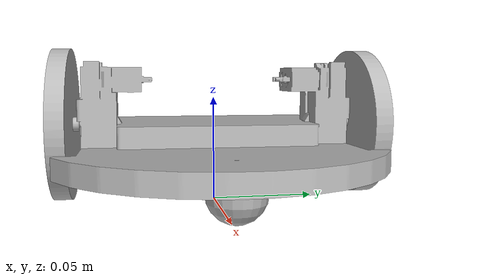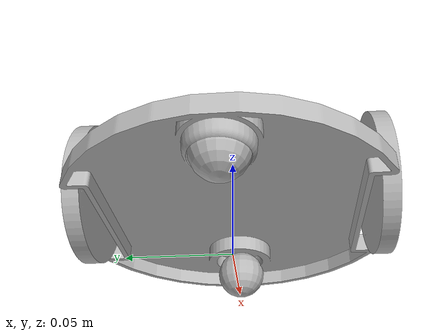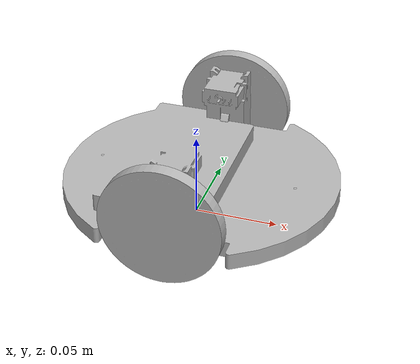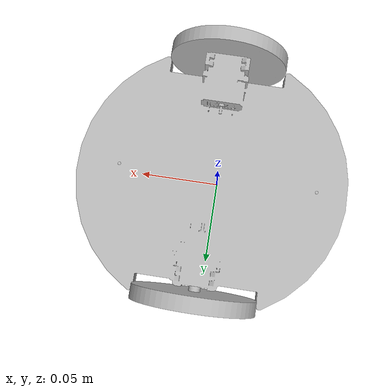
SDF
<?xml version="1.0" ?>

<sdf version="1.5">
    <model name="romi">

        <plugin name="romi_control" filename="libromi_plugin.so">
        </plugin>

        <link name="chassis">
            <collision name="chassis_collision">
                <pose>0 0 .04 0 0 1.5708</pose>
                <geometry>
                    <cylinder>
                        <radius>.082</radius>
                        <length>.06</length>
                    </cylinder>
                </geometry>
            </collision>

            <visual name="chassis_visual">
                <pose>0 0 .04 0 0 1.5708</pose>
                <geometry>
                    <mesh>
                        <uri>model://romi_description/meshes/chassis.dae</uri>
                    </mesh>
                </geometry>
            </visual>

            <collision name="rear_caster_collision">
                <pose>-.06 0 .016 0 0 0</pose>
                <geometry>
                    <sphere>
                        <radius>.0127</radius>
                    </sphere>
                </geometry>

                <!-- zero friction -->
                <surface>
                    <friction>
                        <ode>
                            <mu>0</mu>
                            <mu2>0</mu2>
                            <slip1>1.0</slip1>
                            <slip2>1.0</slip2>
                        </ode>
                    </friction>
                </surface>
            </collision>

            <visual name="rear_caster_visual">
                <pose>-.06 0 .0155 0 0 0</pose>
                <geometry>
                    <sphere>
                        <radius>.0127</radius>
                    </sphere>
                </geometry>
            </visual>

            <collision name="front_caster_collision">
                <pose>.06 0 .016 0 0 0</pose>
                <geometry>
                    <sphere>
                        <radius>.0127</radius>
                    </sphere>
                </geometry>

                <!-- zero friction -->
                <surface>
                    <friction>
                        <ode>
                            <mu>0</mu>
                            <mu2>0</mu2>
                            <slip1>1.0</slip1>
                            <slip2>1.0</slip2>
                        </ode>
                    </friction>
                </surface>
            </collision>

            <visual name="front_caster_visual">
                <pose>.06 0 .0155 0 0 0</pose>
                <geometry>
                    <sphere>
                        <radius>.0127</radius>
                    </sphere>
                </geometry>
            </visual>

            <inertial>
                <pose>0 0 .04 0 0 0</pose>
                <mass>0.2</mass>
                <inertia>
                    <ixx>0.000363</ixx>
                    <iyy>0.000363</iyy>
                    <izz>0.001345</izz>
                    <ixy>0</ixy>
                    <ixz>0</ixz>
                    <iyz>0</iyz>
                </inertia>
            </inertial>

            <sensor type="gpu_ray" name="dist_sensor_0">
                <pose>.06 0 .033 0 0 0</pose>
                <visualize>true</visualize>
                <update_rate>15</update_rate>
                <ray>
                    <scan>
                        <horizontal>
                            <samples>3</samples>
                            <resolution>1</resolution>
                            <min_angle>-.01</min_angle>
                            <max_angle>.01</max_angle>
                        </horizontal>
                    </scan>
                    <range>
                        <min>0.01</min>
                        <max>2.0</max>
                        <resolution>0.005</resolution>
                    </range>
                </ray>
                <plugin name="dist_0" filename="libgazebo_ros_gpu_laser.so">
                    <topicName>/romi/dist/fwd</topicName>
                    <frameName>frame_dist_fwd</frameName>
                </plugin>
            </sensor>

            <sensor type="gpu_ray" name="dist_sensor_n45">
                <pose>.06 0 .033 0 0 .7854</pose>
                <visualize>true</visualize>
                <update_rate>15</update_rate>
                <ray>
                    <scan>
                        <horizontal>
                            <samples>3</samples>
                            <resolution>1</resolution>
                            <min_angle>-.01</min_angle>
                            <max_angle>.01</max_angle>
                        </horizontal>
                    </scan>
                    <range>
                        <min>0.01</min>
                        <max>2.0</max>
                        <resolution>0.005</resolution>
                    </range>
                </ray>
                <plugin name="dist_n45" filename="libgazebo_ros_gpu_laser.so">
                    <topicName>/romi/dist/n45</topicName>
                    <frameName>frame_dist_n45</frameName>
                </plugin>
            </sensor>

            <sensor type="gpu_ray" name="dist_sensor_p45">
                <pose>.06 0 .033 0 0 -.7854</pose>
                <visualize>true</visualize>
                <update_rate>15</update_rate>
                <ray>
                    <scan>
                        <horizontal>
                            <samples>3</samples>
                            <resolution>1</resolution>
                            <min_angle>-.01</min_angle>
                            <max_angle>.01</max_angle>
                        </horizontal>
                    </scan>
                    <range>
                        <min>0.01</min>
                        <max>2.0</max>
                        <resolution>0.005</resolution>
                    </range>
                </ray>
                <plugin name="dist_p45" filename="libgazebo_ros_gpu_laser.so">
                    <topicName>/romi/dist/p45</topicName>
                    <frameName>frame_dist_p45</frameName>
                </plugin>
            </sensor>

        </link>

        <link name="left_wheel">
            <collision name="left_wheel_collision">
                <pose>.0034 .069 .038 1.5708 0 0</pose>
                <geometry>
                    <cylinder>
                        <radius>.035</radius>
                        <length>.012</length>
                    </cylinder>
                </geometry>
            </collision>

            <visual name="left_wheel_visual">
                <pose>.0034 .069 .038 0 0 1.5708</pose>
                <geometry>
                    <mesh>
                        <uri>model://romi_description/meshes/wheel.dae</uri>
                    </mesh>
                </geometry>
            </visual>

            <inertial>
                <pose>.0034 .069 .038 0 0 1.5708</pose>
                <mass>0.05</mass>
                <inertia>
                    <ixx>0.000336</ixx>
                    <iyy>0.000091</iyy>
                    <izz>0.000091</izz>
                    <ixy>0</ixy>
                    <ixz>0</ixz>
                    <iyz>0</iyz>
                </inertia>
            </inertial>
        </link>

        <link name="right_wheel">
            <collision name="right_wheel_collision">
                <pose>.0034 -.069 .038 1.5708 0 0</pose>
                <geometry>
                    <cylinder>
                        <radius>.035</radius>
                        <length>.012</length>
                    </cylinder>
                </geometry>
            </collision>

            <visual name="right_wheel_visual">
                <pose>.0034 -.069 .038 0 0 -1.5708</pose>
                <geometry>
                    <mesh>
                        <uri>model://romi_description/meshes/wheel.dae</uri>
                    </mesh>
                </geometry>
            </visual>

            <inertial>
                <pose>.0034 -.069 .038 1.5708 0 0</pose>
                <mass>0.05</mass>
                <inertia>
                    <ixx>0.000336</ixx>
                    <iyy>0.000091</iyy>
                    <izz>0.000091</izz>
                    <ixy>0</ixy>
                    <ixz>0</ixz>
                    <iyz>0</iyz>
                </inertia>
            </inertial>
        </link>

        <joint type="revolute" name="left_wheel_joint">
            <pose>.0034 .067 .038 0 0 1.5708</pose>
            <parent>chassis</parent>
            <child>left_wheel</child>
            <axis>
                <xyz>1 0 0</xyz>
                <limit>
                    <lower>-10000000000000000</lower>
                    <upper>10000000000000000</upper>
                </limit>
            </axis>
        </joint>

        <joint type="revolute" name="right_wheel_joint">
            <pose>.0034 -.067 .038 0 0 1.5708</pose>
            <parent>chassis</parent>
            <child>right_wheel</child>
            <axis>
                <xyz>-1 0 0</xyz>
                <limit>
                    <lower>-10000000000000000</lower>
                    <upper>10000000000000000</upper>
                </limit>
            </axis>
        </joint>

    </model>
</sdf>
